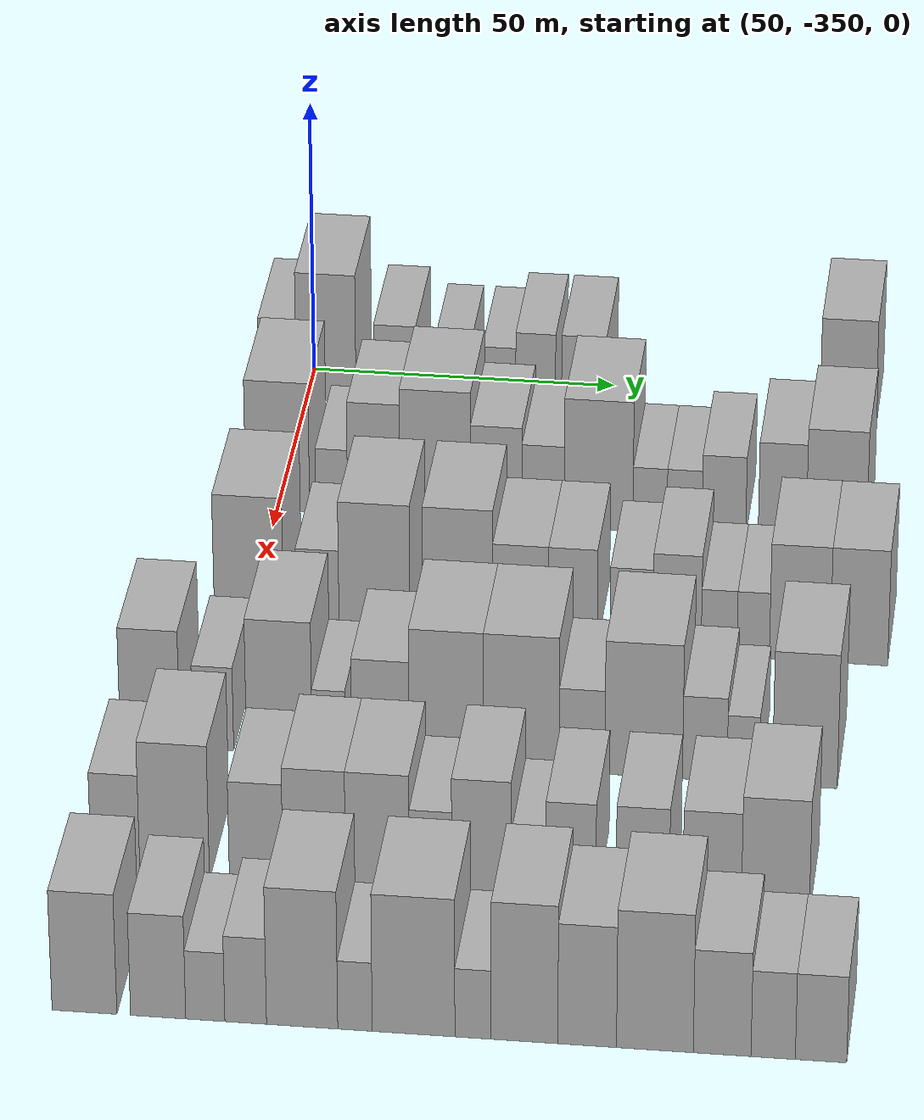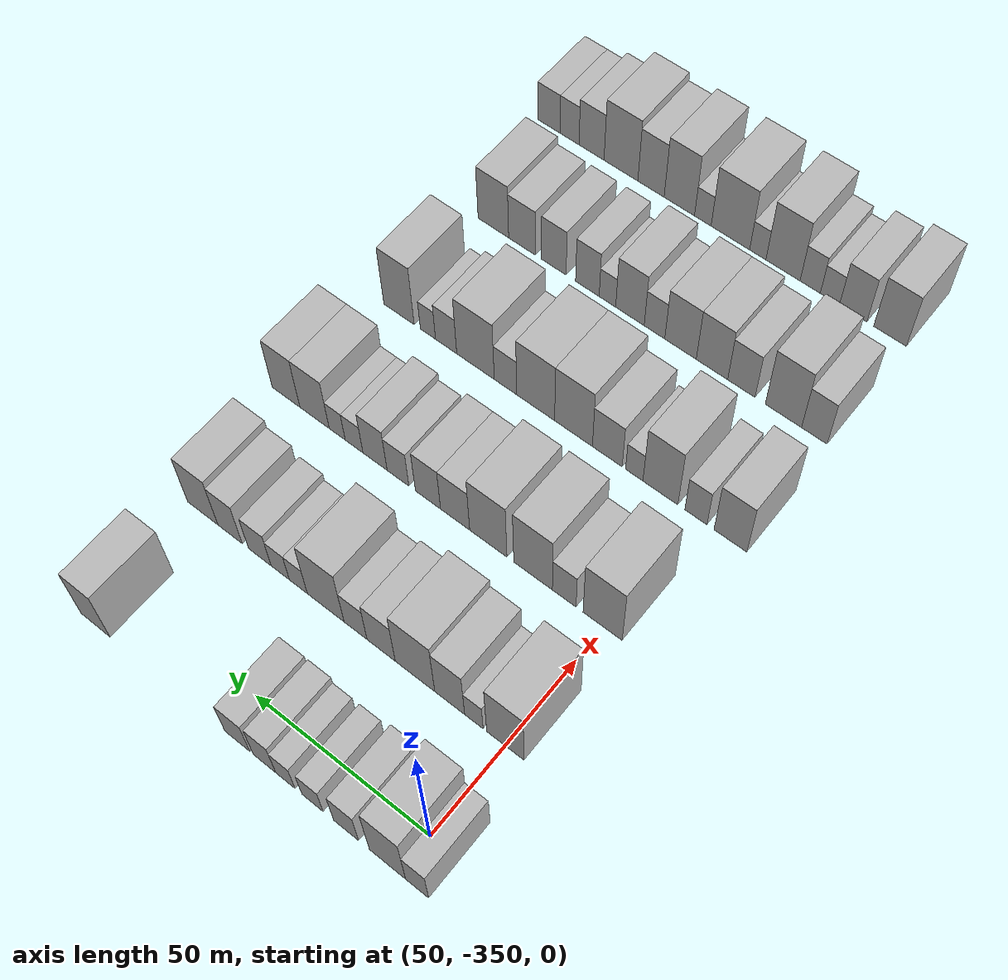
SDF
<sdf version="1.6">
 <world name="default">
  <model name="building_27">
   <static>1</static>
   <pose>50.0000 -354.7856 0 0.000000 0.000000 0.000000</pose>
   <link name="link">
    <pose>0 0 7.50 0 0 0</pose>
    <collision name="collision"><geometry><box><size>20.0000 6.2274 15.0000</size></box></geometry></collision>
    <visual name="visual">
     <cast_shadows>0</cast_shadows>
     <geometry><box><size>20.0000 6.2274 15.0000</size></box></geometry>
     <material>
      <script>
       <uri>model://HANNAS_wall/materials/scripts</uri>
       <uri>model://HANNAS_wall/materials/textures</uri>
       <name>vrc/HANNAS_wall</name>
      </script>
     </material>
    </visual>
   </link>
  </model>
  <model name="building_28">
   <static>1</static>
   <pose>50.0000 -346.7114 0 0.000000 0.000000 0.000000</pose>
   <link name="link">
    <pose>0 0 12.00 0 0 0</pose>
    <collision name="collision"><geometry><box><size>20.0000 9.9210 24.0000</size></box></geometry></collision>
    <visual name="visual">
     <cast_shadows>0</cast_shadows>
     <geometry><box><size>20.0000 9.9210 24.0000</size></box></geometry>
     <material>
      <script>
       <uri>model://HANNAS_wall/materials/scripts</uri>
       <uri>model://HANNAS_wall/materials/textures</uri>
       <name>vrc/HANNAS_wall</name>
      </script>
     </material>
    </visual>
   </link>
  </model>
  <model name="building_29">
   <static>1</static>
   <pose>50.0000 -335.2698 0 0.000000 0.000000 0.000000</pose>
   <link name="link">
    <pose>0 0 7.50 0 0 0</pose>
    <collision name="collision"><geometry><box><size>20.0000 6.9622 15.0000</size></box></geometry></collision>
    <visual name="visual">
     <cast_shadows>0</cast_shadows>
     <geometry><box><size>20.0000 6.9622 15.0000</size></box></geometry>
     <material>
      <script>
       <uri>model://HANNAS_wall/materials/scripts</uri>
       <uri>model://HANNAS_wall/materials/textures</uri>
       <name>vrc/HANNAS_wall</name>
      </script>
     </material>
    </visual>
   </link>
  </model>
  <model name="building_30">
   <static>1</static>
   <pose>50.0000 -325.7899 0 0.000000 0.000000 0.000000</pose>
   <link name="link">
    <pose>0 0 6.00 0 0 0</pose>
    <collision name="collision"><geometry><box><size>20.0000 5.9975 12.0000</size></box></geometry></collision>
    <visual name="visual">
     <cast_shadows>0</cast_shadows>
     <geometry><box><size>20.0000 5.9975 12.0000</size></box></geometry>
     <material>
      <script>
       <uri>model://HANNAS_wall/materials/scripts</uri>
       <uri>model://HANNAS_wall/materials/textures</uri>
       <name>vrc/HANNAS_wall</name>
      </script>
     </material>
    </visual>
   </link>
  </model>
  <model name="building_31">
   <static>1</static>
   <pose>50.0000 -318.0262 0 0.000000 0.000000 0.000000</pose>
   <link name="link">
    <pose>0 0 6.00 0 0 0</pose>
    <collision name="collision"><geometry><box><size>20.0000 5.5300 12.0000</size></box></geometry></collision>
    <visual name="visual">
     <cast_shadows>0</cast_shadows>
     <geometry><box><size>20.0000 5.5300 12.0000</size></box></geometry>
     <material>
      <script>
       <uri>model://HANNAS_wall/materials/scripts</uri>
       <uri>model://HANNAS_wall/materials/textures</uri>
       <name>vrc/HANNAS_wall</name>
      </script>
     </material>
    </visual>
   </link>
  </model>
  <model name="building_32">
   <static>1</static>
   <pose>50.0000 -311.9786 0 0.000000 0.000000 0.000000</pose>
   <link name="link">
    <pose>0 0 7.50 0 0 0</pose>
    <collision name="collision"><geometry><box><size>20.0000 6.5651 15.0000</size></box></geometry></collision>
    <visual name="visual">
     <cast_shadows>0</cast_shadows>
     <geometry><box><size>20.0000 6.5651 15.0000</size></box></geometry>
     <material>
      <script>
       <uri>model://HANNAS_wall/materials/scripts</uri>
       <uri>model://HANNAS_wall/materials/textures</uri>
       <name>vrc/HANNAS_wall</name>
      </script>
     </material>
    </visual>
   </link>
  </model>
  <model name="building_33">
   <static>1</static>
   <pose>50.0000 -304.0128 0 0.000000 0.000000 0.000000</pose>
   <link name="link">
    <pose>0 0 7.50 0 0 0</pose>
    <collision name="collision"><geometry><box><size>20.0000 7.3666 15.0000</size></box></geometry></collision>
    <visual name="visual">
     <cast_shadows>0</cast_shadows>
     <geometry><box><size>20.0000 7.3666 15.0000</size></box></geometry>
     <material>
      <script>
       <uri>model://HANNAS_wall/materials/scripts</uri>
       <uri>model://HANNAS_wall/materials/textures</uri>
       <name>vrc/HANNAS_wall</name>
      </script>
     </material>
    </visual>
   </link>
  </model>
  <model name="building_34">
   <static>1</static>
   <pose>50.0000 -260.5769 0 0.000000 0.000000 0.000000</pose>
   <link name="link">
    <pose>0 0 10.50 0 0 0</pose>
    <collision name="collision"><geometry><box><size>20.0000 9.1684 21.0000</size></box></geometry></collision>
    <visual name="visual">
     <cast_shadows>0</cast_shadows>
     <geometry><box><size>20.0000 9.1684 21.0000</size></box></geometry>
     <material>
      <script>
       <uri>model://HANNAS_wall/materials/scripts</uri>
       <uri>model://HANNAS_wall/materials/textures</uri>
       <name>vrc/HANNAS_wall</name>
      </script>
     </material>
    </visual>
   </link>
  </model>
  <model name="building_148">
   <static>1</static>
   <pose>85.0000 -349.8934 0 0.000000 0.000000 0.000000</pose>
   <link name="link">
    <pose>0 0 12.00 0 0 0</pose>
    <collision name="collision"><geometry><box><size>20.0000 10.3303 24.0000</size></box></geometry></collision>
    <visual name="visual">
     <cast_shadows>0</cast_shadows>
     <geometry><box><size>20.0000 10.3303 24.0000</size></box></geometry>
     <material>
      <script>
       <uri>model://HANNAS_wall/materials/scripts</uri>
       <uri>model://HANNAS_wall/materials/textures</uri>
       <name>vrc/HANNAS_wall</name>
      </script>
     </material>
    </visual>
   </link>
  </model>
  <model name="building_149">
   <static>1</static>
   <pose>85.0000 -341.1460 0 0.000000 0.000000 0.000000</pose>
   <link name="link">
    <pose>0 0 6.00 0 0 0</pose>
    <collision name="collision"><geometry><box><size>20.0000 5.1645 12.0000</size></box></geometry></collision>
    <visual name="visual">
     <cast_shadows>0</cast_shadows>
     <geometry><box><size>20.0000 5.1645 12.0000</size></box></geometry>
     <material>
      <script>
       <uri>model://HANNAS_wall/materials/scripts</uri>
       <uri>model://HANNAS_wall/materials/textures</uri>
       <name>vrc/HANNAS_wall</name>
      </script>
     </material>
    </visual>
   </link>
  </model>
  <model name="building_150">
   <static>1</static>
   <pose>85.0000 -334.3285 0 0.000000 0.000000 0.000000</pose>
   <link name="link">
    <pose>0 0 10.50 0 0 0</pose>
    <collision name="collision"><geometry><box><size>20.0000 8.4703 21.0000</size></box></geometry></collision>
    <visual name="visual">
     <cast_shadows>0</cast_shadows>
     <geometry><box><size>20.0000 8.4703 21.0000</size></box></geometry>
     <material>
      <script>
       <uri>model://HANNAS_wall/materials/scripts</uri>
       <uri>model://HANNAS_wall/materials/textures</uri>
       <name>vrc/HANNAS_wall</name>
      </script>
     </material>
    </visual>
   </link>
  </model>
  <model name="building_151">
   <static>1</static>
   <pose>85.0000 -324.3884 0 0.000000 0.000000 0.000000</pose>
   <link name="link">
    <pose>0 0 12.00 0 0 0</pose>
    <collision name="collision"><geometry><box><size>20.0000 11.4100 24.0000</size></box></geometry></collision>
    <visual name="visual">
     <cast_shadows>0</cast_shadows>
     <geometry><box><size>20.0000 11.4100 24.0000</size></box></geometry>
     <material>
      <script>
       <uri>model://HANNAS_wall/materials/scripts</uri>
       <uri>model://HANNAS_wall/materials/textures</uri>
       <name>vrc/HANNAS_wall</name>
      </script>
     </material>
    </visual>
   </link>
  </model>
  <model name="building_152">
   <static>1</static>
   <pose>85.0000 -314.5510 0 0.000000 0.000000 0.000000</pose>
   <link name="link">
    <pose>0 0 9.00 0 0 0</pose>
    <collision name="collision"><geometry><box><size>20.0000 8.2647 18.0000</size></box></geometry></collision>
    <visual name="visual">
     <cast_shadows>0</cast_shadows>
     <geometry><box><size>20.0000 8.2647 18.0000</size></box></geometry>
     <material>
      <script>
       <uri>model://HANNAS_wall/materials/scripts</uri>
       <uri>model://HANNAS_wall/materials/textures</uri>
       <name>vrc/HANNAS_wall</name>
      </script>
     </material>
    </visual>
   </link>
  </model>
  <model name="building_153">
   <static>1</static>
   <pose>85.0000 -307.0141 0 0.000000 0.000000 0.000000</pose>
   <link name="link">
    <pose>0 0 7.50 0 0 0</pose>
    <collision name="collision"><geometry><box><size>20.0000 6.8091 15.0000</size></box></geometry></collision>
    <visual name="visual">
     <cast_shadows>0</cast_shadows>
     <geometry><box><size>20.0000 6.8091 15.0000</size></box></geometry>
     <material>
      <script>
       <uri>model://HANNAS_wall/materials/scripts</uri>
       <uri>model://HANNAS_wall/materials/textures</uri>
       <name>vrc/HANNAS_wall</name>
      </script>
     </material>
    </visual>
   </link>
  </model>
  <model name="building_154">
   <static>1</static>
   <pose>85.0000 -298.0739 0 0.000000 0.000000 0.000000</pose>
   <link name="link">
    <pose>0 0 12.00 0 0 0</pose>
    <collision name="collision"><geometry><box><size>20.0000 11.0714 24.0000</size></box></geometry></collision>
    <visual name="visual">
     <cast_shadows>0</cast_shadows>
     <geometry><box><size>20.0000 11.0714 24.0000</size></box></geometry>
     <material>
      <script>
       <uri>model://HANNAS_wall/materials/scripts</uri>
       <uri>model://HANNAS_wall/materials/textures</uri>
       <name>vrc/HANNAS_wall</name>
      </script>
     </material>
    </visual>
   </link>
  </model>
  <model name="building_155">
   <static>1</static>
   <pose>85.0000 -289.7898 0 0.000000 0.000000 0.000000</pose>
   <link name="link">
    <pose>0 0 6.00 0 0 0</pose>
    <collision name="collision"><geometry><box><size>20.0000 5.4967 12.0000</size></box></geometry></collision>
    <visual name="visual">
     <cast_shadows>0</cast_shadows>
     <geometry><box><size>20.0000 5.4967 12.0000</size></box></geometry>
     <material>
      <script>
       <uri>model://HANNAS_wall/materials/scripts</uri>
       <uri>model://HANNAS_wall/materials/textures</uri>
       <name>vrc/HANNAS_wall</name>
      </script>
     </material>
    </visual>
   </link>
  </model>
  <model name="building_156">
   <static>1</static>
   <pose>85.0000 -284.2433 0 0.000000 0.000000 0.000000</pose>
   <link name="link">
    <pose>0 0 6.00 0 0 0</pose>
    <collision name="collision"><geometry><box><size>20.0000 5.5965 12.0000</size></box></geometry></collision>
    <visual name="visual">
     <cast_shadows>0</cast_shadows>
     <geometry><box><size>20.0000 5.5965 12.0000</size></box></geometry>
     <material>
      <script>
       <uri>model://HANNAS_wall/materials/scripts</uri>
       <uri>model://HANNAS_wall/materials/textures</uri>
       <name>vrc/HANNAS_wall</name>
      </script>
     </material>
    </visual>
   </link>
  </model>
  <model name="building_157">
   <static>1</static>
   <pose>85.0000 -277.9265 0 0.000000 0.000000 0.000000</pose>
   <link name="link">
    <pose>0 0 7.50 0 0 0</pose>
    <collision name="collision"><geometry><box><size>20.0000 7.0369 15.0000</size></box></geometry></collision>
    <visual name="visual">
     <cast_shadows>0</cast_shadows>
     <geometry><box><size>20.0000 7.0369 15.0000</size></box></geometry>
     <material>
      <script>
       <uri>model://HANNAS_wall/materials/scripts</uri>
       <uri>model://HANNAS_wall/materials/textures</uri>
       <name>vrc/HANNAS_wall</name>
      </script>
     </material>
    </visual>
   </link>
  </model>
  <model name="building_158">
   <static>1</static>
   <pose>85.0000 -268.5743 0 0.000000 0.000000 0.000000</pose>
   <link name="link">
    <pose>0 0 9.00 0 0 0</pose>
    <collision name="collision"><geometry><box><size>20.0000 7.6675 18.0000</size></box></geometry></collision>
    <visual name="visual">
     <cast_shadows>0</cast_shadows>
     <geometry><box><size>20.0000 7.6675 18.0000</size></box></geometry>
     <material>
      <script>
       <uri>model://HANNAS_wall/materials/scripts</uri>
       <uri>model://HANNAS_wall/materials/textures</uri>
       <name>vrc/HANNAS_wall</name>
      </script>
     </material>
    </visual>
   </link>
  </model>
  <model name="building_159">
   <static>1</static>
   <pose>85.0000 -259.9058 0 0.000000 0.000000 0.000000</pose>
   <link name="link">
    <pose>0 0 10.50 0 0 0</pose>
    <collision name="collision"><geometry><box><size>20.0000 9.6696 21.0000</size></box></geometry></collision>
    <visual name="visual">
     <cast_shadows>0</cast_shadows>
     <geometry><box><size>20.0000 9.6696 21.0000</size></box></geometry>
     <material>
      <script>
       <uri>model://HANNAS_wall/materials/scripts</uri>
       <uri>model://HANNAS_wall/materials/textures</uri>
       <name>vrc/HANNAS_wall</name>
      </script>
     </material>
    </visual>
   </link>
  </model>
  <model name="building_277">
   <static>1</static>
   <pose>120.0000 -349.5481 0 0.000000 0.000000 0.000000</pose>
   <link name="link">
    <pose>0 0 12.00 0 0 0</pose>
    <collision name="collision"><geometry><box><size>20.0000 10.9549 24.0000</size></box></geometry></collision>
    <visual name="visual">
     <cast_shadows>0</cast_shadows>
     <geometry><box><size>20.0000 10.9549 24.0000</size></box></geometry>
     <material>
      <script>
       <uri>model://HANNAS_wall/materials/scripts</uri>
       <uri>model://HANNAS_wall/materials/textures</uri>
       <name>vrc/HANNAS_wall</name>
      </script>
     </material>
    </visual>
   </link>
  </model>
  <model name="building_278">
   <static>1</static>
   <pose>120.0000 -338.6995 0 0.000000 0.000000 0.000000</pose>
   <link name="link">
    <pose>0 0 7.50 0 0 0</pose>
    <collision name="collision"><geometry><box><size>20.0000 6.7422 15.0000</size></box></geometry></collision>
    <visual name="visual">
     <cast_shadows>0</cast_shadows>
     <geometry><box><size>20.0000 6.7422 15.0000</size></box></geometry>
     <material>
      <script>
       <uri>model://HANNAS_wall/materials/scripts</uri>
       <uri>model://HANNAS_wall/materials/textures</uri>
       <name>vrc/HANNAS_wall</name>
      </script>
     </material>
    </visual>
   </link>
  </model>
  <model name="building_279">
   <static>1</static>
   <pose>120.0000 -329.7407 0 0.000000 0.000000 0.000000</pose>
   <link name="link">
    <pose>0 0 12.00 0 0 0</pose>
    <collision name="collision"><geometry><box><size>20.0000 11.1754 24.0000</size></box></geometry></collision>
    <visual name="visual">
     <cast_shadows>0</cast_shadows>
     <geometry><box><size>20.0000 11.1754 24.0000</size></box></geometry>
     <material>
      <script>
       <uri>model://HANNAS_wall/materials/scripts</uri>
       <uri>model://HANNAS_wall/materials/textures</uri>
       <name>vrc/HANNAS_wall</name>
      </script>
     </material>
    </visual>
   </link>
  </model>
  <model name="building_280">
   <static>1</static>
   <pose>120.0000 -316.6470 0 0.000000 0.000000 0.000000</pose>
   <link name="link">
    <pose>0 0 12.00 0 0 0</pose>
    <collision name="collision"><geometry><box><size>20.0000 11.0120 24.0000</size></box></geometry></collision>
    <visual name="visual">
     <cast_shadows>0</cast_shadows>
     <geometry><box><size>20.0000 11.0120 24.0000</size></box></geometry>
     <material>
      <script>
       <uri>model://HANNAS_wall/materials/scripts</uri>
       <uri>model://HANNAS_wall/materials/textures</uri>
       <name>vrc/HANNAS_wall</name>
      </script>
     </material>
    </visual>
   </link>
  </model>
  <model name="building_281">
   <static>1</static>
   <pose>120.0000 -306.7622 0 0.000000 0.000000 0.000000</pose>
   <link name="link">
    <pose>0 0 9.00 0 0 0</pose>
    <collision name="collision"><geometry><box><size>20.0000 8.7577 18.0000</size></box></geometry></collision>
    <visual name="visual">
     <cast_shadows>0</cast_shadows>
     <geometry><box><size>20.0000 8.7577 18.0000</size></box></geometry>
     <material>
      <script>
       <uri>model://HANNAS_wall/materials/scripts</uri>
       <uri>model://HANNAS_wall/materials/textures</uri>
       <name>vrc/HANNAS_wall</name>
      </script>
     </material>
    </visual>
   </link>
  </model>
  <model name="building_282">
   <static>1</static>
   <pose>120.0000 -298.5610 0 0.000000 0.000000 0.000000</pose>
   <link name="link">
    <pose>0 0 9.00 0 0 0</pose>
    <collision name="collision"><geometry><box><size>20.0000 7.6446 18.0000</size></box></geometry></collision>
    <visual name="visual">
     <cast_shadows>0</cast_shadows>
     <geometry><box><size>20.0000 7.6446 18.0000</size></box></geometry>
     <material>
      <script>
       <uri>model://HANNAS_wall/materials/scripts</uri>
       <uri>model://HANNAS_wall/materials/textures</uri>
       <name>vrc/HANNAS_wall</name>
      </script>
     </material>
    </visual>
   </link>
  </model>
  <model name="building_283">
   <static>1</static>
   <pose>120.0000 -289.3799 0 0.000000 0.000000 0.000000</pose>
   <link name="link">
    <pose>0 0 7.50 0 0 0</pose>
    <collision name="collision"><geometry><box><size>20.0000 6.7175 15.0000</size></box></geometry></collision>
    <visual name="visual">
     <cast_shadows>0</cast_shadows>
     <geometry><box><size>20.0000 6.7175 15.0000</size></box></geometry>
     <material>
      <script>
       <uri>model://HANNAS_wall/materials/scripts</uri>
       <uri>model://HANNAS_wall/materials/textures</uri>
       <name>vrc/HANNAS_wall</name>
      </script>
     </material>
    </visual>
   </link>
  </model>
  <model name="building_284">
   <static>1</static>
   <pose>120.0000 -282.2383 0 0.000000 0.000000 0.000000</pose>
   <link name="link">
    <pose>0 0 9.00 0 0 0</pose>
    <collision name="collision"><geometry><box><size>20.0000 7.5658 18.0000</size></box></geometry></collision>
    <visual name="visual">
     <cast_shadows>0</cast_shadows>
     <geometry><box><size>20.0000 7.5658 18.0000</size></box></geometry>
     <material>
      <script>
       <uri>model://HANNAS_wall/materials/scripts</uri>
       <uri>model://HANNAS_wall/materials/textures</uri>
       <name>vrc/HANNAS_wall</name>
      </script>
     </material>
    </visual>
   </link>
  </model>
  <model name="building_285">
   <static>1</static>
   <pose>120.0000 -275.6614 0 0.000000 0.000000 0.000000</pose>
   <link name="link">
    <pose>0 0 6.00 0 0 0</pose>
    <collision name="collision"><geometry><box><size>20.0000 5.5881 12.0000</size></box></geometry></collision>
    <visual name="visual">
     <cast_shadows>0</cast_shadows>
     <geometry><box><size>20.0000 5.5881 12.0000</size></box></geometry>
     <material>
      <script>
       <uri>model://HANNAS_wall/materials/scripts</uri>
       <uri>model://HANNAS_wall/materials/textures</uri>
       <name>vrc/HANNAS_wall</name>
      </script>
     </material>
    </visual>
   </link>
  </model>
  <model name="building_286">
   <static>1</static>
   <pose>120.0000 -270.3306 0 0.000000 0.000000 0.000000</pose>
   <link name="link">
    <pose>0 0 6.00 0 0 0</pose>
    <collision name="collision"><geometry><box><size>20.0000 5.0734 12.0000</size></box></geometry></collision>
    <visual name="visual">
     <cast_shadows>0</cast_shadows>
     <geometry><box><size>20.0000 5.0734 12.0000</size></box></geometry>
     <material>
      <script>
       <uri>model://HANNAS_wall/materials/scripts</uri>
       <uri>model://HANNAS_wall/materials/textures</uri>
       <name>vrc/HANNAS_wall</name>
      </script>
     </material>
    </visual>
   </link>
  </model>
  <model name="building_287">
   <static>1</static>
   <pose>120.0000 -263.0649 0 0.000000 0.000000 0.000000</pose>
   <link name="link">
    <pose>0 0 10.50 0 0 0</pose>
    <collision name="collision"><geometry><box><size>20.0000 9.4582 21.0000</size></box></geometry></collision>
    <visual name="visual">
     <cast_shadows>0</cast_shadows>
     <geometry><box><size>20.0000 9.4582 21.0000</size></box></geometry>
     <material>
      <script>
       <uri>model://HANNAS_wall/materials/scripts</uri>
       <uri>model://HANNAS_wall/materials/textures</uri>
       <name>vrc/HANNAS_wall</name>
      </script>
     </material>
    </visual>
   </link>
  </model>
  <model name="building_288">
   <static>1</static>
   <pose>120.0000 -253.8404 0 0.000000 0.000000 0.000000</pose>
   <link name="link">
    <pose>0 0 10.50 0 0 0</pose>
    <collision name="collision"><geometry><box><size>20.0000 8.9907 21.0000</size></box></geometry></collision>
    <visual name="visual">
     <cast_shadows>0</cast_shadows>
     <geometry><box><size>20.0000 8.9907 21.0000</size></box></geometry>
     <material>
      <script>
       <uri>model://HANNAS_wall/materials/scripts</uri>
       <uri>model://HANNAS_wall/materials/textures</uri>
       <name>vrc/HANNAS_wall</name>
      </script>
     </material>
    </visual>
   </link>
  </model>
  <model name="building_405">
   <static>1</static>
   <pose>155.0000 -359.8244 0 0.000000 0.000000 0.000000</pose>
   <link name="link">
    <pose>0 0 10.50 0 0 0</pose>
    <collision name="collision"><geometry><box><size>20.0000 9.2007 21.0000</size></box></geometry></collision>
    <visual name="visual">
     <cast_shadows>0</cast_shadows>
     <geometry><box><size>20.0000 9.2007 21.0000</size></box></geometry>
     <material>
      <script>
       <uri>model://HANNAS_wall/materials/scripts</uri>
       <uri>model://HANNAS_wall/materials/textures</uri>
       <name>vrc/HANNAS_wall</name>
      </script>
     </material>
    </visual>
   </link>
  </model>
  <model name="building_406">
   <static>1</static>
   <pose>155.0000 -350.0815 0 0.000000 0.000000 0.000000</pose>
   <link name="link">
    <pose>0 0 7.50 0 0 0</pose>
    <collision name="collision"><geometry><box><size>20.0000 6.2849 15.0000</size></box></geometry></collision>
    <visual name="visual">
     <cast_shadows>0</cast_shadows>
     <geometry><box><size>20.0000 6.2849 15.0000</size></box></geometry>
     <material>
      <script>
       <uri>model://HANNAS_wall/materials/scripts</uri>
       <uri>model://HANNAS_wall/materials/textures</uri>
       <name>vrc/HANNAS_wall</name>
      </script>
     </material>
    </visual>
   </link>
  </model>
  <model name="building_407">
   <static>1</static>
   <pose>155.0000 -339.8868 0 0.000000 0.000000 0.000000</pose>
   <link name="link">
    <pose>0 0 12.00 0 0 0</pose>
    <collision name="collision"><geometry><box><size>20.0000 10.1045 24.0000</size></box></geometry></collision>
    <visual name="visual">
     <cast_shadows>0</cast_shadows>
     <geometry><box><size>20.0000 10.1045 24.0000</size></box></geometry>
     <material>
      <script>
       <uri>model://HANNAS_wall/materials/scripts</uri>
       <uri>model://HANNAS_wall/materials/textures</uri>
       <name>vrc/HANNAS_wall</name>
      </script>
     </material>
    </visual>
   </link>
  </model>
  <model name="building_408">
   <static>1</static>
   <pose>155.0000 -332.2996 0 0.000000 0.000000 0.000000</pose>
   <link name="link">
    <pose>0 0 6.00 0 0 0</pose>
    <collision name="collision"><geometry><box><size>20.0000 5.0700 12.0000</size></box></geometry></collision>
    <visual name="visual">
     <cast_shadows>0</cast_shadows>
     <geometry><box><size>20.0000 5.0700 12.0000</size></box></geometry>
     <material>
      <script>
       <uri>model://HANNAS_wall/materials/scripts</uri>
       <uri>model://HANNAS_wall/materials/textures</uri>
       <name>vrc/HANNAS_wall</name>
      </script>
     </material>
    </visual>
   </link>
  </model>
  <model name="building_409">
   <static>1</static>
   <pose>155.0000 -324.3641 0 0.000000 0.000000 0.000000</pose>
   <link name="link">
    <pose>0 0 9.00 0 0 0</pose>
    <collision name="collision"><geometry><box><size>20.0000 8.8010 18.0000</size></box></geometry></collision>
    <visual name="visual">
     <cast_shadows>0</cast_shadows>
     <geometry><box><size>20.0000 8.8010 18.0000</size></box></geometry>
     <material>
      <script>
       <uri>model://HANNAS_wall/materials/scripts</uri>
       <uri>model://HANNAS_wall/materials/textures</uri>
       <name>vrc/HANNAS_wall</name>
      </script>
     </material>
    </visual>
   </link>
  </model>
  <model name="building_410">
   <static>1</static>
   <pose>155.0000 -314.2777 0 0.000000 0.000000 0.000000</pose>
   <link name="link">
    <pose>0 0 12.00 0 0 0</pose>
    <collision name="collision"><geometry><box><size>20.0000 11.3717 24.0000</size></box></geometry></collision>
    <visual name="visual">
     <cast_shadows>0</cast_shadows>
     <geometry><box><size>20.0000 11.3717 24.0000</size></box></geometry>
     <material>
      <script>
       <uri>model://HANNAS_wall/materials/scripts</uri>
       <uri>model://HANNAS_wall/materials/textures</uri>
       <name>vrc/HANNAS_wall</name>
      </script>
     </material>
    </visual>
   </link>
  </model>
  <model name="building_411">
   <static>1</static>
   <pose>155.0000 -302.8029 0 0.000000 0.000000 0.000000</pose>
   <link name="link">
    <pose>0 0 12.00 0 0 0</pose>
    <collision name="collision"><geometry><box><size>20.0000 11.5780 24.0000</size></box></geometry></collision>
    <visual name="visual">
     <cast_shadows>0</cast_shadows>
     <geometry><box><size>20.0000 11.5780 24.0000</size></box></geometry>
     <material>
      <script>
       <uri>model://HANNAS_wall/materials/scripts</uri>
       <uri>model://HANNAS_wall/materials/textures</uri>
       <name>vrc/HANNAS_wall</name>
      </script>
     </material>
    </visual>
   </link>
  </model>
  <model name="building_412">
   <static>1</static>
   <pose>155.0000 -293.5215 0 0.000000 0.000000 0.000000</pose>
   <link name="link">
    <pose>0 0 7.50 0 0 0</pose>
    <collision name="collision"><geometry><box><size>20.0000 6.9847 15.0000</size></box></geometry></collision>
    <visual name="visual">
     <cast_shadows>0</cast_shadows>
     <geometry><box><size>20.0000 6.9847 15.0000</size></box></geometry>
     <material>
      <script>
       <uri>model://HANNAS_wall/materials/scripts</uri>
       <uri>model://HANNAS_wall/materials/textures</uri>
       <name>vrc/HANNAS_wall</name>
      </script>
     </material>
    </visual>
   </link>
  </model>
  <model name="building_413">
   <static>1</static>
   <pose>155.0000 -284.1101 0 0.000000 0.000000 0.000000</pose>
   <link name="link">
    <pose>0 0 12.00 0 0 0</pose>
    <collision name="collision"><geometry><box><size>20.0000 11.8381 24.0000</size></box></geometry></collision>
    <visual name="visual">
     <cast_shadows>0</cast_shadows>
     <geometry><box><size>20.0000 11.8381 24.0000</size></box></geometry>
     <material>
      <script>
       <uri>model://HANNAS_wall/materials/scripts</uri>
       <uri>model://HANNAS_wall/materials/textures</uri>
       <name>vrc/HANNAS_wall</name>
      </script>
     </material>
    </visual>
   </link>
  </model>
  <model name="building_414">
   <static>1</static>
   <pose>155.0000 -274.8036 0 0.000000 0.000000 0.000000</pose>
   <link name="link">
    <pose>0 0 7.50 0 0 0</pose>
    <collision name="collision"><geometry><box><size>20.0000 6.7748 15.0000</size></box></geometry></collision>
    <visual name="visual">
     <cast_shadows>0</cast_shadows>
     <geometry><box><size>20.0000 6.7748 15.0000</size></box></geometry>
     <material>
      <script>
       <uri>model://HANNAS_wall/materials/scripts</uri>
       <uri>model://HANNAS_wall/materials/textures</uri>
       <name>vrc/HANNAS_wall</name>
      </script>
     </material>
    </visual>
   </link>
  </model>
  <model name="building_415">
   <static>1</static>
   <pose>155.0000 -268.9752 0 0.000000 0.000000 0.000000</pose>
   <link name="link">
    <pose>0 0 6.00 0 0 0</pose>
    <collision name="collision"><geometry><box><size>20.0000 4.8821 12.0000</size></box></geometry></collision>
    <visual name="visual">
     <cast_shadows>0</cast_shadows>
     <geometry><box><size>20.0000 4.8821 12.0000</size></box></geometry>
     <material>
      <script>
       <uri>model://HANNAS_wall/materials/scripts</uri>
       <uri>model://HANNAS_wall/materials/textures</uri>
       <name>vrc/HANNAS_wall</name>
      </script>
     </material>
    </visual>
   </link>
  </model>
  <model name="building_416">
   <static>1</static>
   <pose>155.0000 -259.6018 0 0.000000 0.000000 0.000000</pose>
   <link name="link">
    <pose>0 0 12.00 0 0 0</pose>
    <collision name="collision"><geometry><box><size>20.0000 9.8646 24.0000</size></box></geometry></collision>
    <visual name="visual">
     <cast_shadows>0</cast_shadows>
     <geometry><box><size>20.0000 9.8646 24.0000</size></box></geometry>
     <material>
      <script>
       <uri>model://HANNAS_wall/materials/scripts</uri>
       <uri>model://HANNAS_wall/materials/textures</uri>
       <name>vrc/HANNAS_wall</name>
      </script>
     </material>
    </visual>
   </link>
  </model>
  <model name="building_535">
   <static>1</static>
   <pose>190.0000 -359.5932 0 0.000000 0.000000 0.000000</pose>
   <link name="link">
    <pose>0 0 9.00 0 0 0</pose>
    <collision name="collision"><geometry><box><size>20.0000 7.2928 18.0000</size></box></geometry></collision>
    <visual name="visual">
     <cast_shadows>0</cast_shadows>
     <geometry><box><size>20.0000 7.2928 18.0000</size></box></geometry>
     <material>
      <script>
       <uri>model://HANNAS_wall/materials/scripts</uri>
       <uri>model://HANNAS_wall/materials/textures</uri>
       <name>vrc/HANNAS_wall</name>
      </script>
     </material>
    </visual>
   </link>
  </model>
  <model name="building_536">
   <static>1</static>
   <pose>190.0000 -350.7249 0 0.000000 0.000000 0.000000</pose>
   <link name="link">
    <pose>0 0 12.00 0 0 0</pose>
    <collision name="collision"><geometry><box><size>20.0000 10.4437 24.0000</size></box></geometry></collision>
    <visual name="visual">
     <cast_shadows>0</cast_shadows>
     <geometry><box><size>20.0000 10.4437 24.0000</size></box></geometry>
     <material>
      <script>
       <uri>model://HANNAS_wall/materials/scripts</uri>
       <uri>model://HANNAS_wall/materials/textures</uri>
       <name>vrc/HANNAS_wall</name>
      </script>
     </material>
    </visual>
   </link>
  </model>
  <model name="building_537">
   <static>1</static>
   <pose>190.0000 -338.4826 0 0.000000 0.000000 0.000000</pose>
   <link name="link">
    <pose>0 0 9.00 0 0 0</pose>
    <collision name="collision"><geometry><box><size>20.0000 8.0410 18.0000</size></box></geometry></collision>
    <visual name="visual">
     <cast_shadows>0</cast_shadows>
     <geometry><box><size>20.0000 8.0410 18.0000</size></box></geometry>
     <material>
      <script>
       <uri>model://HANNAS_wall/materials/scripts</uri>
       <uri>model://HANNAS_wall/materials/textures</uri>
       <name>vrc/HANNAS_wall</name>
      </script>
     </material>
    </visual>
   </link>
  </model>
  <model name="building_538">
   <static>1</static>
   <pose>190.0000 -329.7825 0 0.000000 0.000000 0.000000</pose>
   <link name="link">
    <pose>0 0 10.50 0 0 0</pose>
    <collision name="collision"><geometry><box><size>20.0000 9.3591 21.0000</size></box></geometry></collision>
    <visual name="visual">
     <cast_shadows>0</cast_shadows>
     <geometry><box><size>20.0000 9.3591 21.0000</size></box></geometry>
     <material>
      <script>
       <uri>model://HANNAS_wall/materials/scripts</uri>
       <uri>model://HANNAS_wall/materials/textures</uri>
       <name>vrc/HANNAS_wall</name>
      </script>
     </material>
    </visual>
   </link>
  </model>
  <model name="building_539">
   <static>1</static>
   <pose>190.0000 -320.3431 0 0.000000 0.000000 0.000000</pose>
   <link name="link">
    <pose>0 0 10.50 0 0 0</pose>
    <collision name="collision"><geometry><box><size>20.0000 9.5197 21.0000</size></box></geometry></collision>
    <visual name="visual">
     <cast_shadows>0</cast_shadows>
     <geometry><box><size>20.0000 9.5197 21.0000</size></box></geometry>
     <material>
      <script>
       <uri>model://HANNAS_wall/materials/scripts</uri>
       <uri>model://HANNAS_wall/materials/textures</uri>
       <name>vrc/HANNAS_wall</name>
      </script>
     </material>
    </visual>
   </link>
  </model>
  <model name="building_540">
   <static>1</static>
   <pose>190.0000 -312.4329 0 0.000000 0.000000 0.000000</pose>
   <link name="link">
    <pose>0 0 7.50 0 0 0</pose>
    <collision name="collision"><geometry><box><size>20.0000 6.3008 15.0000</size></box></geometry></collision>
    <visual name="visual">
     <cast_shadows>0</cast_shadows>
     <geometry><box><size>20.0000 6.3008 15.0000</size></box></geometry>
     <material>
      <script>
       <uri>model://HANNAS_wall/materials/scripts</uri>
       <uri>model://HANNAS_wall/materials/textures</uri>
       <name>vrc/HANNAS_wall</name>
      </script>
     </material>
    </visual>
   </link>
  </model>
  <model name="building_541">
   <static>1</static>
   <pose>190.0000 -304.8758 0 0.000000 0.000000 0.000000</pose>
   <link name="link">
    <pose>0 0 10.50 0 0 0</pose>
    <collision name="collision"><geometry><box><size>20.0000 8.8132 21.0000</size></box></geometry></collision>
    <visual name="visual">
     <cast_shadows>0</cast_shadows>
     <geometry><box><size>20.0000 8.8132 21.0000</size></box></geometry>
     <material>
      <script>
       <uri>model://HANNAS_wall/materials/scripts</uri>
       <uri>model://HANNAS_wall/materials/textures</uri>
       <name>vrc/HANNAS_wall</name>
      </script>
     </material>
    </visual>
   </link>
  </model>
  <model name="building_542">
   <static>1</static>
   <pose>190.0000 -297.8917 0 0.000000 0.000000 0.000000</pose>
   <link name="link">
    <pose>0 0 6.00 0 0 0</pose>
    <collision name="collision"><geometry><box><size>20.0000 5.1552 12.0000</size></box></geometry></collision>
    <visual name="visual">
     <cast_shadows>0</cast_shadows>
     <geometry><box><size>20.0000 5.1552 12.0000</size></box></geometry>
     <material>
      <script>
       <uri>model://HANNAS_wall/materials/scripts</uri>
       <uri>model://HANNAS_wall/materials/textures</uri>
       <name>vrc/HANNAS_wall</name>
      </script>
     </material>
    </visual>
   </link>
  </model>
  <model name="building_543">
   <static>1</static>
   <pose>190.0000 -291.5907 0 0.000000 0.000000 0.000000</pose>
   <link name="link">
    <pose>0 0 9.00 0 0 0</pose>
    <collision name="collision"><geometry><box><size>20.0000 7.4467 18.0000</size></box></geometry></collision>
    <visual name="visual">
     <cast_shadows>0</cast_shadows>
     <geometry><box><size>20.0000 7.4467 18.0000</size></box></geometry>
     <material>
      <script>
       <uri>model://HANNAS_wall/materials/scripts</uri>
       <uri>model://HANNAS_wall/materials/textures</uri>
       <name>vrc/HANNAS_wall</name>
      </script>
     </material>
    </visual>
   </link>
  </model>
  <model name="building_544">
   <static>1</static>
   <pose>190.0000 -280.9281 0 0.000000 0.000000 0.000000</pose>
   <link name="link">
    <pose>0 0 9.00 0 0 0</pose>
    <collision name="collision"><geometry><box><size>20.0000 7.8785 18.0000</size></box></geometry></collision>
    <visual name="visual">
     <cast_shadows>0</cast_shadows>
     <geometry><box><size>20.0000 7.8785 18.0000</size></box></geometry>
     <material>
      <script>
       <uri>model://HANNAS_wall/materials/scripts</uri>
       <uri>model://HANNAS_wall/materials/textures</uri>
       <name>vrc/HANNAS_wall</name>
      </script>
     </material>
    </visual>
   </link>
  </model>
  <model name="building_545">
   <static>1</static>
   <pose>190.0000 -270.6578 0 0.000000 0.000000 0.000000</pose>
   <link name="link">
    <pose>0 0 9.00 0 0 0</pose>
    <collision name="collision"><geometry><box><size>20.0000 8.6621 18.0000</size></box></geometry></collision>
    <visual name="visual">
     <cast_shadows>0</cast_shadows>
     <geometry><box><size>20.0000 8.6621 18.0000</size></box></geometry>
     <material>
      <script>
       <uri>model://HANNAS_wall/materials/scripts</uri>
       <uri>model://HANNAS_wall/materials/textures</uri>
       <name>vrc/HANNAS_wall</name>
      </script>
     </material>
    </visual>
   </link>
  </model>
  <model name="building_546">
   <static>1</static>
   <pose>190.0000 -261.3019 0 0.000000 0.000000 0.000000</pose>
   <link name="link">
    <pose>0 0 10.50 0 0 0</pose>
    <collision name="collision"><geometry><box><size>20.0000 10.0496 21.0000</size></box></geometry></collision>
    <visual name="visual">
     <cast_shadows>0</cast_shadows>
     <geometry><box><size>20.0000 10.0496 21.0000</size></box></geometry>
     <material>
      <script>
       <uri>model://HANNAS_wall/materials/scripts</uri>
       <uri>model://HANNAS_wall/materials/textures</uri>
       <name>vrc/HANNAS_wall</name>
      </script>
     </material>
    </visual>
   </link>
  </model>
  <model name="building_662">
   <static>1</static>
   <pose>225.0000 -358.6033 0 0.000000 0.000000 0.000000</pose>
   <link name="link">
    <pose>0 0 10.50 0 0 0</pose>
    <collision name="collision"><geometry><box><size>20.0000 9.4788 21.0000</size></box></geometry></collision>
    <visual name="visual">
     <cast_shadows>0</cast_shadows>
     <geometry><box><size>20.0000 9.4788 21.0000</size></box></geometry>
     <material>
      <script>
       <uri>model://HANNAS_wall/materials/scripts</uri>
       <uri>model://HANNAS_wall/materials/textures</uri>
       <name>vrc/HANNAS_wall</name>
      </script>
     </material>
    </visual>
   </link>
  </model>
  <model name="building_663">
   <static>1</static>
   <pose>225.0000 -347.8324 0 0.000000 0.000000 0.000000</pose>
   <link name="link">
    <pose>0 0 9.00 0 0 0</pose>
    <collision name="collision"><geometry><box><size>20.0000 8.0631 18.0000</size></box></geometry></collision>
    <visual name="visual">
     <cast_shadows>0</cast_shadows>
     <geometry><box><size>20.0000 8.0631 18.0000</size></box></geometry>
     <material>
      <script>
       <uri>model://HANNAS_wall/materials/scripts</uri>
       <uri>model://HANNAS_wall/materials/textures</uri>
       <name>vrc/HANNAS_wall</name>
      </script>
     </material>
    </visual>
   </link>
  </model>
  <model name="building_664">
   <static>1</static>
   <pose>225.0000 -340.9542 0 0.000000 0.000000 0.000000</pose>
   <link name="link">
    <pose>0 0 6.00 0 0 0</pose>
    <collision name="collision"><geometry><box><size>20.0000 5.6932 12.0000</size></box></geometry></collision>
    <visual name="visual">
     <cast_shadows>0</cast_shadows>
     <geometry><box><size>20.0000 5.6932 12.0000</size></box></geometry>
     <material>
      <script>
       <uri>model://HANNAS_wall/materials/scripts</uri>
       <uri>model://HANNAS_wall/materials/textures</uri>
       <name>vrc/HANNAS_wall</name>
      </script>
     </material>
    </visual>
   </link>
  </model>
  <model name="building_665">
   <static>1</static>
   <pose>225.0000 -335.0726 0 0.000000 0.000000 0.000000</pose>
   <link name="link">
    <pose>0 0 7.50 0 0 0</pose>
    <collision name="collision"><geometry><box><size>20.0000 6.0701 15.0000</size></box></geometry></collision>
    <visual name="visual">
     <cast_shadows>0</cast_shadows>
     <geometry><box><size>20.0000 6.0701 15.0000</size></box></geometry>
     <material>
      <script>
       <uri>model://HANNAS_wall/materials/scripts</uri>
       <uri>model://HANNAS_wall/materials/textures</uri>
       <name>vrc/HANNAS_wall</name>
      </script>
     </material>
    </visual>
   </link>
  </model>
  <model name="building_666">
   <static>1</static>
   <pose>225.0000 -326.8551 0 0.000000 0.000000 0.000000</pose>
   <link name="link">
    <pose>0 0 12.00 0 0 0</pose>
    <collision name="collision"><geometry><box><size>20.0000 10.3650 24.0000</size></box></geometry></collision>
    <visual name="visual">
     <cast_shadows>0</cast_shadows>
     <geometry><box><size>20.0000 10.3650 24.0000</size></box></geometry>
     <material>
      <script>
       <uri>model://HANNAS_wall/materials/scripts</uri>
       <uri>model://HANNAS_wall/materials/textures</uri>
       <name>vrc/HANNAS_wall</name>
      </script>
     </material>
    </visual>
   </link>
  </model>
  <model name="building_667">
   <static>1</static>
   <pose>225.0000 -319.1674 0 0.000000 0.000000 0.000000</pose>
   <link name="link">
    <pose>0 0 6.00 0 0 0</pose>
    <collision name="collision"><geometry><box><size>20.0000 5.0105 12.0000</size></box></geometry></collision>
    <visual name="visual">
     <cast_shadows>0</cast_shadows>
     <geometry><box><size>20.0000 5.0105 12.0000</size></box></geometry>
     <material>
      <script>
       <uri>model://HANNAS_wall/materials/scripts</uri>
       <uri>model://HANNAS_wall/materials/textures</uri>
       <name>vrc/HANNAS_wall</name>
      </script>
     </material>
    </visual>
   </link>
  </model>
  <model name="building_668">
   <static>1</static>
   <pose>225.0000 -310.6726 0 0.000000 0.000000 0.000000</pose>
   <link name="link">
    <pose>0 0 12.00 0 0 0</pose>
    <collision name="collision"><geometry><box><size>20.0000 11.9792 24.0000</size></box></geometry></collision>
    <visual name="visual">
     <cast_shadows>0</cast_shadows>
     <geometry><box><size>20.0000 11.9792 24.0000</size></box></geometry>
     <material>
      <script>
       <uri>model://HANNAS_wall/materials/scripts</uri>
       <uri>model://HANNAS_wall/materials/textures</uri>
       <name>vrc/HANNAS_wall</name>
      </script>
     </material>
    </visual>
   </link>
  </model>
  <model name="building_669">
   <static>1</static>
   <pose>225.0000 -302.0652 0 0.000000 0.000000 0.000000</pose>
   <link name="link">
    <pose>0 0 6.00 0 0 0</pose>
    <collision name="collision"><geometry><box><size>20.0000 5.2356 12.0000</size></box></geometry></collision>
    <visual name="visual">
     <cast_shadows>0</cast_shadows>
     <geometry><box><size>20.0000 5.2356 12.0000</size></box></geometry>
     <material>
      <script>
       <uri>model://HANNAS_wall/materials/scripts</uri>
       <uri>model://HANNAS_wall/materials/textures</uri>
       <name>vrc/HANNAS_wall</name>
      </script>
     </material>
    </visual>
   </link>
  </model>
  <model name="building_670">
   <static>1</static>
   <pose>225.0000 -294.6191 0 0.000000 0.000000 0.000000</pose>
   <link name="link">
    <pose>0 0 12.00 0 0 0</pose>
    <collision name="collision"><geometry><box><size>20.0000 9.6566 24.0000</size></box></geometry></collision>
    <visual name="visual">
     <cast_shadows>0</cast_shadows>
     <geometry><box><size>20.0000 9.6566 24.0000</size></box></geometry>
     <material>
      <script>
       <uri>model://HANNAS_wall/materials/scripts</uri>
       <uri>model://HANNAS_wall/materials/textures</uri>
       <name>vrc/HANNAS_wall</name>
      </script>
     </material>
    </visual>
   </link>
  </model>
  <model name="building_671">
   <static>1</static>
   <pose>225.0000 -285.5587 0 0.000000 0.000000 0.000000</pose>
   <link name="link">
    <pose>0 0 10.50 0 0 0</pose>
    <collision name="collision"><geometry><box><size>20.0000 8.4640 21.0000</size></box></geometry></collision>
    <visual name="visual">
     <cast_shadows>0</cast_shadows>
     <geometry><box><size>20.0000 8.4640 21.0000</size></box></geometry>
     <material>
      <script>
       <uri>model://HANNAS_wall/materials/scripts</uri>
       <uri>model://HANNAS_wall/materials/textures</uri>
       <name>vrc/HANNAS_wall</name>
      </script>
     </material>
    </visual>
   </link>
  </model>
  <model name="building_672">
   <static>1</static>
   <pose>225.0000 -275.7955 0 0.000000 0.000000 0.000000</pose>
   <link name="link">
    <pose>0 0 12.00 0 0 0</pose>
    <collision name="collision"><geometry><box><size>20.0000 11.0623 24.0000</size></box></geometry></collision>
    <visual name="visual">
     <cast_shadows>0</cast_shadows>
     <geometry><box><size>20.0000 11.0623 24.0000</size></box></geometry>
     <material>
      <script>
       <uri>model://HANNAS_wall/materials/scripts</uri>
       <uri>model://HANNAS_wall/materials/textures</uri>
       <name>vrc/HANNAS_wall</name>
      </script>
     </material>
    </visual>
   </link>
  </model>
  <model name="building_673">
   <static>1</static>
   <pose>225.0000 -266.1178 0 0.000000 0.000000 0.000000</pose>
   <link name="link">
    <pose>0 0 9.00 0 0 0</pose>
    <collision name="collision"><geometry><box><size>20.0000 8.2931 18.0000</size></box></geometry></collision>
    <visual name="visual">
     <cast_shadows>0</cast_shadows>
     <geometry><box><size>20.0000 8.2931 18.0000</size></box></geometry>
     <material>
      <script>
       <uri>model://HANNAS_wall/materials/scripts</uri>
       <uri>model://HANNAS_wall/materials/textures</uri>
       <name>vrc/HANNAS_wall</name>
      </script>
     </material>
    </visual>
   </link>
  </model>
  <model name="building_674">
   <static>1</static>
   <pose>225.0000 -258.7839 0 0.000000 0.000000 0.000000</pose>
   <link name="link">
    <pose>0 0 7.50 0 0 0</pose>
    <collision name="collision"><geometry><box><size>20.0000 6.3748 15.0000</size></box></geometry></collision>
    <visual name="visual">
     <cast_shadows>0</cast_shadows>
     <geometry><box><size>20.0000 6.3748 15.0000</size></box></geometry>
     <material>
      <script>
       <uri>model://HANNAS_wall/materials/scripts</uri>
       <uri>model://HANNAS_wall/materials/textures</uri>
       <name>vrc/HANNAS_wall</name>
      </script>
     </material>
    </visual>
   </link>
  </model>
  <model name="building_675">
   <static>1</static>
   <pose>225.0000 -251.9109 0 0.000000 0.000000 0.000000</pose>
   <link name="link">
    <pose>0 0 7.50 0 0 0</pose>
    <collision name="collision"><geometry><box><size>20.0000 7.3711 15.0000</size></box></geometry></collision>
    <visual name="visual">
     <cast_shadows>0</cast_shadows>
     <geometry><box><size>20.0000 7.3711 15.0000</size></box></geometry>
     <material>
      <script>
       <uri>model://HANNAS_wall/materials/scripts</uri>
       <uri>model://HANNAS_wall/materials/textures</uri>
       <name>vrc/HANNAS_wall</name>
      </script>
     </material>
    </visual>
   </link>
  </model>
 </world>
</sdf>
